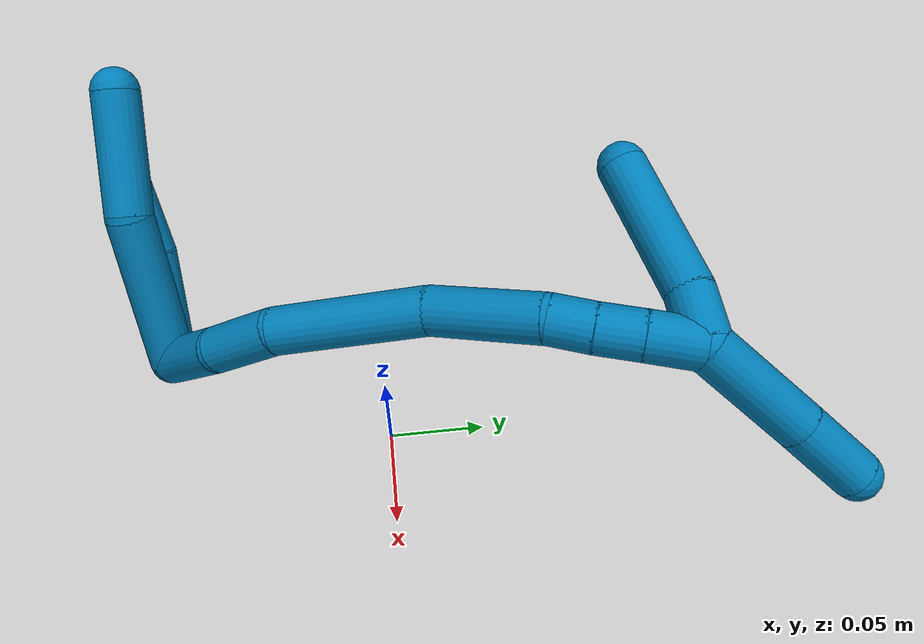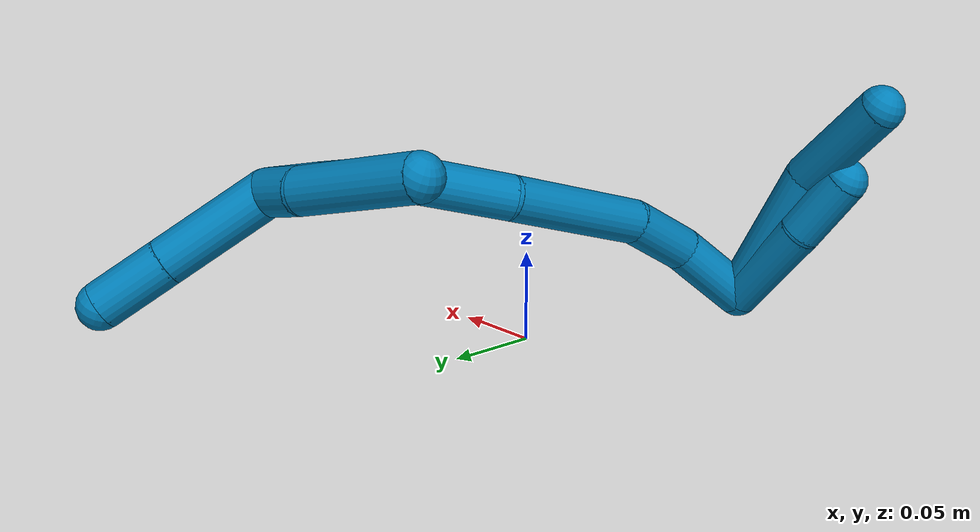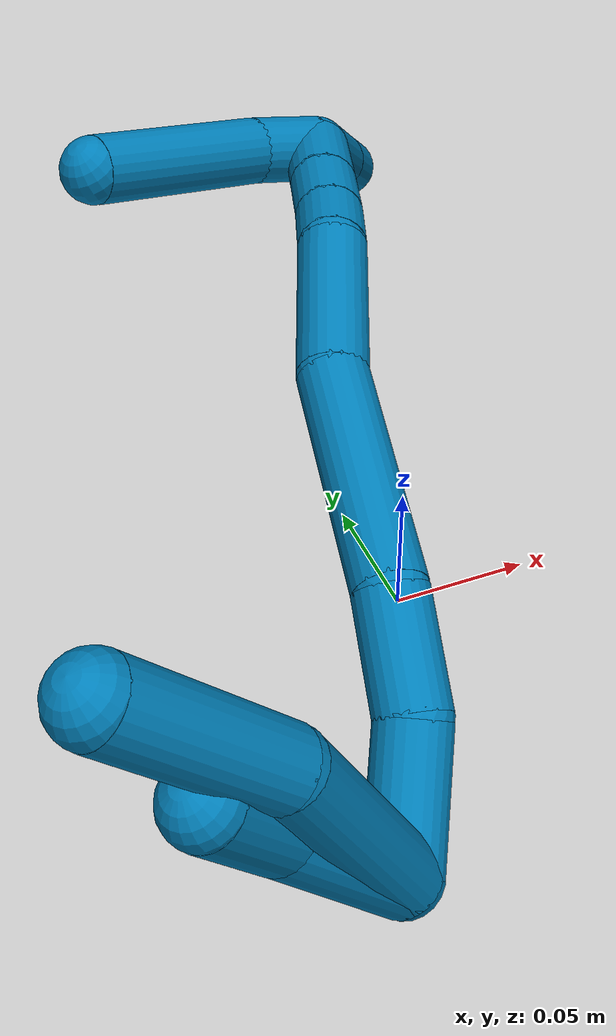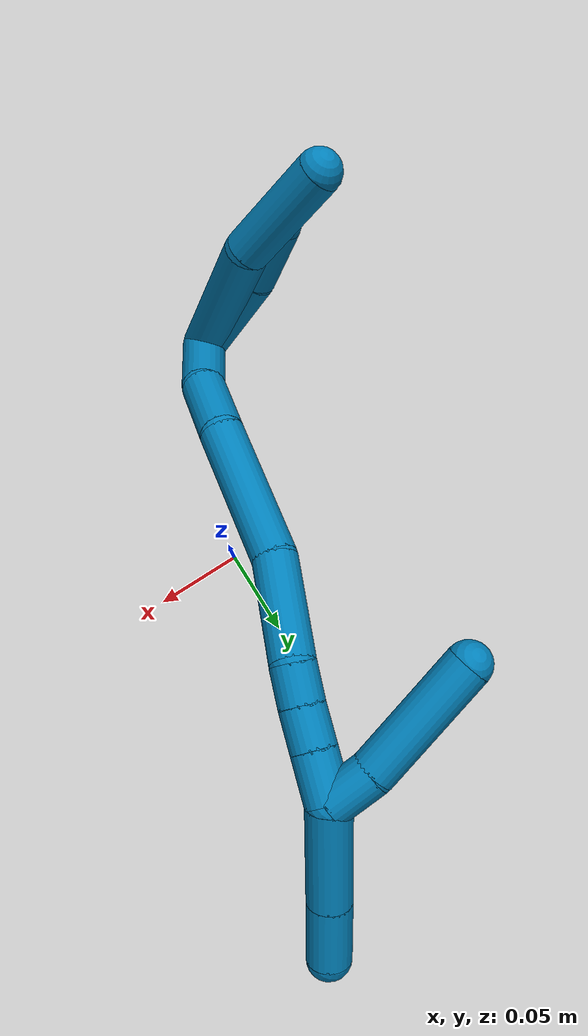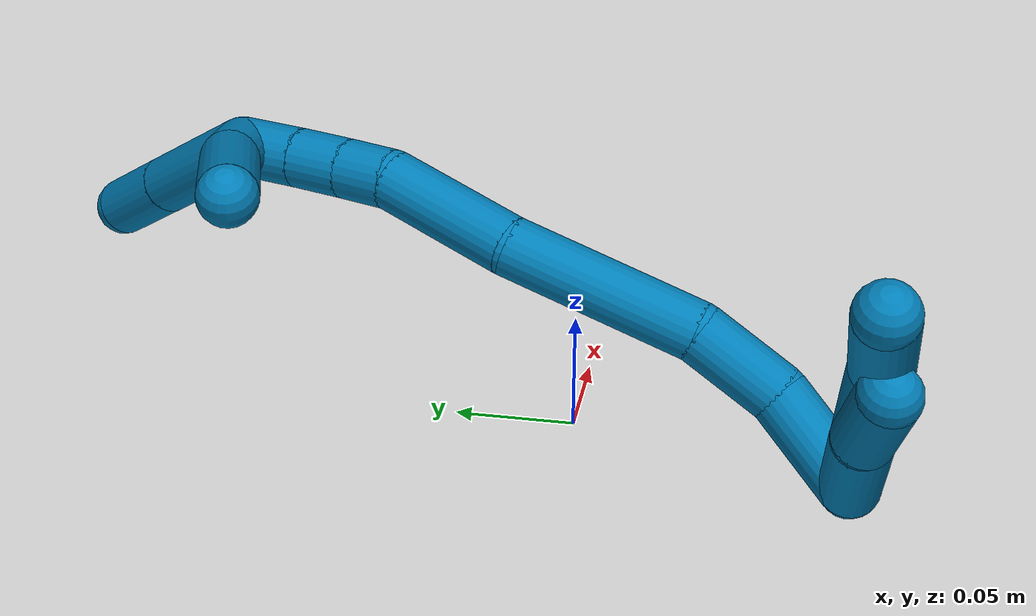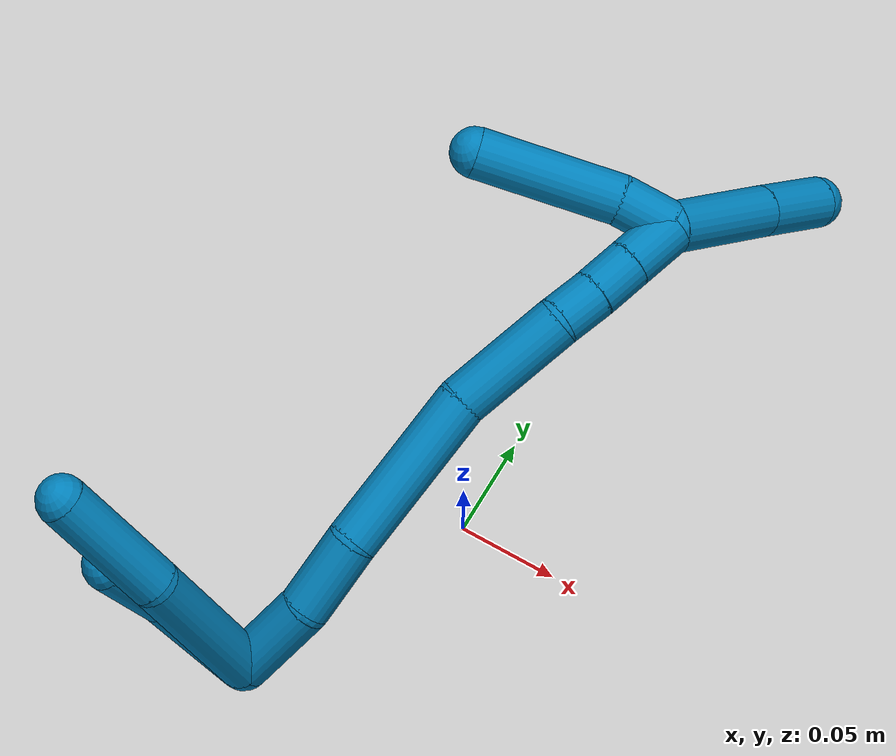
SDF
<sdf version="1.7">
 <world name="default">
  <model name="9">
   <static>0</static>
   <link name="9">
    <collision name="collision-cylinder-e_1_2_8">
     <pose>8e-05 -0.00032 -0.04298 3.13415 0.001851 0.487192</pose>
     <geometry><cylinder><radius>0.0125</radius><length>0.085963</length></cylinder></geometry>
     <surface>
      <friction><ode><mu>1.16</mu><mu2>1.16</mu2><slip1>0</slip1><slip2>0</slip2></ode></friction>
      <contact><ode><kp>1e+06</kp><kd>1</kd><max_vel>0</max_vel><min_depth>0.001</min_depth></ode></contact>
     </surface>
    </collision>
    <visual name="visual-cylinder-e_1_2_8">
     <pose>8e-05 -0.00032 -0.04298 3.13415 0.001851 0.487192</pose>
     <geometry><cylinder><radius>0.0125</radius><length>0.085963</length></cylinder></geometry>
     <material><ambient>0 0.490196 0.709804 1</ambient></material>
    </visual>
    <collision name="collision-cylinder-e_2_8_6">
     <pose>0.009794 -0.005158 -0.116159 2.99311 0.305664 2.24187</pose>
     <geometry><cylinder><radius>0.0125</radius><length>0.064037</length></cylinder></geometry>
     <surface>
      <friction><ode><mu>1.16</mu><mu2>1.16</mu2><slip1>0</slip1><slip2>0</slip2></ode></friction>
      <contact><ode><kp>1e+06</kp><kd>1</kd><max_vel>0</max_vel><min_depth>0.001</min_depth></ode></contact>
     </surface>
    </collision>
    <visual name="visual-cylinder-e_2_8_6">
     <pose>0.009794 -0.005158 -0.116159 2.99311 0.305664 2.24187</pose>
     <geometry><cylinder><radius>0.0125</radius><length>0.064037</length></cylinder></geometry>
     <material><ambient>0 0.490196 0.709804 1</ambient></material>
    </visual>
    <collision name="collision-cylinder-e_1_2_9">
     <pose>0.006128 -0.004081 -0.029458 3.00393 0.203228 1.95255</pose>
     <geometry><cylinder><radius>0.0125</radius><length>0.060728</length></cylinder></geometry>
     <surface>
      <friction><ode><mu>1.16</mu><mu2>1.16</mu2><slip1>0</slip1><slip2>0</slip2></ode></friction>
      <contact><ode><kp>1e+06</kp><kd>1</kd><max_vel>0</max_vel><min_depth>0.001</min_depth></ode></contact>
     </surface>
    </collision>
    <visual name="visual-cylinder-e_1_2_9">
     <pose>0.006128 -0.004081 -0.029458 3.00393 0.203228 1.95255</pose>
     <geometry><cylinder><radius>0.0125</radius><length>0.060728</length></cylinder></geometry>
     <material><ambient>0 0.490196 0.709804 1</ambient></material>
    </visual>
    <collision name="collision-cylinder-e_2_9_5">
     <pose>0.012994 -0.011743 -0.078208 2.95805 0.037558 0.402636</pose>
     <geometry><cylinder><radius>0.0125</radius><length>0.039272</length></cylinder></geometry>
     <surface>
      <friction><ode><mu>1.16</mu><mu2>1.16</mu2><slip1>0</slip1><slip2>0</slip2></ode></friction>
      <contact><ode><kp>1e+06</kp><kd>1</kd><max_vel>0</max_vel><min_depth>0.001</min_depth></ode></contact>
     </surface>
    </collision>
    <visual name="visual-cylinder-e_2_9_5">
     <pose>0.012994 -0.011743 -0.078208 2.95805 0.037558 0.402636</pose>
     <geometry><cylinder><radius>0.0125</radius><length>0.039272</length></cylinder></geometry>
     <material><ambient>0 0.490196 0.709804 1</ambient></material>
    </visual>
    <collision name="collision-cylinder-e_1_2_10">
     <pose>-0.000371 0.021292 -0.007998 -1.93013 -0.016313 0.023554</pose>
     <geometry><cylinder><radius>0.0125</radius><length>0.045496</length></cylinder></geometry>
     <surface>
      <friction><ode><mu>1.16</mu><mu2>1.16</mu2><slip1>0</slip1><slip2>0</slip2></ode></friction>
      <contact><ode><kp>1e+06</kp><kd>1</kd><max_vel>0</max_vel><min_depth>0.001</min_depth></ode></contact>
     </surface>
    </collision>
    <visual name="visual-cylinder-e_1_2_10">
     <pose>-0.000371 0.021292 -0.007998 -1.93013 -0.016313 0.023554</pose>
     <geometry><cylinder><radius>0.0125</radius><length>0.045496</length></cylinder></geometry>
     <material><ambient>0 0.490196 0.709804 1</ambient></material>
    </visual>
    <collision name="collision-cylinder-e_2_10_11">
     <pose>0.00439 0.060733 -0.022242 -1.90222 0.261259 -0.364217</pose>
     <geometry><cylinder><radius>0.0125</radius><length>0.039736</length></cylinder></geometry>
     <surface>
      <friction><ode><mu>1.16</mu><mu2>1.16</mu2><slip1>0</slip1><slip2>0</slip2></ode></friction>
      <contact><ode><kp>1e+06</kp><kd>1</kd><max_vel>0</max_vel><min_depth>0.001</min_depth></ode></contact>
     </surface>
    </collision>
    <visual name="visual-cylinder-e_2_10_11">
     <pose>0.00439 0.060733 -0.022242 -1.90222 0.261259 -0.364217</pose>
     <geometry><cylinder><radius>0.0125</radius><length>0.039736</length></cylinder></geometry>
     <material><ambient>0 0.490196 0.709804 1</ambient></material>
    </visual>
    <collision name="collision-cylinder-e_3_11_12">
     <pose>0.026136 0.116665 -0.032685 -1.68143 0.412036 -0.458749</pose>
     <geometry><cylinder><radius>0.0125</radius><length>0.082973</length></cylinder></geometry>
     <surface>
      <friction><ode><mu>1.16</mu><mu2>1.16</mu2><slip1>0</slip1><slip2>0</slip2></ode></friction>
      <contact><ode><kp>1e+06</kp><kd>1</kd><max_vel>0</max_vel><min_depth>0.001</min_depth></ode></contact>
     </surface>
    </collision>
    <visual name="visual-cylinder-e_3_11_12">
     <pose>0.026136 0.116665 -0.032685 -1.68143 0.412036 -0.458749</pose>
     <geometry><cylinder><radius>0.0125</radius><length>0.082973</length></cylinder></geometry>
     <material><ambient>0 0.490196 0.709804 1</ambient></material>
    </visual>
    <collision name="collision-cylinder-e_4_12_13">
     <pose>0.049675 0.183094 -0.036248 -1.54868 0.23713 -0.231991</pose>
     <geometry><cylinder><radius>0.0125</radius><length>0.058958</length></cylinder></geometry>
     <surface>
      <friction><ode><mu>1.16</mu><mu2>1.16</mu2><slip1>0</slip1><slip2>0</slip2></ode></friction>
      <contact><ode><kp>1e+06</kp><kd>1</kd><max_vel>0</max_vel><min_depth>0.001</min_depth></ode></contact>
     </surface>
    </collision>
    <visual name="visual-cylinder-e_4_12_13">
     <pose>0.049675 0.183094 -0.036248 -1.54868 0.23713 -0.231991</pose>
     <geometry><cylinder><radius>0.0125</radius><length>0.058958</length></cylinder></geometry>
     <material><ambient>0 0.490196 0.709804 1</ambient></material>
    </visual>
    <collision name="collision-cylinder-e_5_13_14">
     <pose>0.060606 0.221697 -0.032976 -1.31178 0.37088 -0.286745</pose>
     <geometry><cylinder><radius>0.0125</radius><length>0.022104</length></cylinder></geometry>
     <surface>
      <friction><ode><mu>1.16</mu><mu2>1.16</mu2><slip1>0</slip1><slip2>0</slip2></ode></friction>
      <contact><ode><kp>1e+06</kp><kd>1</kd><max_vel>0</max_vel><min_depth>0.001</min_depth></ode></contact>
     </surface>
    </collision>
    <visual name="visual-cylinder-e_5_13_14">
     <pose>0.060606 0.221697 -0.032976 -1.31178 0.37088 -0.286745</pose>
     <geometry><cylinder><radius>0.0125</radius><length>0.022104</length></cylinder></geometry>
     <material><ambient>0 0.490196 0.709804 1</ambient></material>
    </visual>
    <collision name="collision-cylinder-e_6_14_15">
     <pose>0.069231 0.241848 -0.027947 -1.34041 0.415513 -0.331095</pose>
     <geometry><cylinder><radius>0.0125</radius><length>0.022887</length></cylinder></geometry>
     <surface>
      <friction><ode><mu>1.16</mu><mu2>1.16</mu2><slip1>0</slip1><slip2>0</slip2></ode></friction>
      <contact><ode><kp>1e+06</kp><kd>1</kd><max_vel>0</max_vel><min_depth>0.001</min_depth></ode></contact>
     </surface>
    </collision>
    <visual name="visual-cylinder-e_6_14_15">
     <pose>0.069231 0.241848 -0.027947 -1.34041 0.415513 -0.331095</pose>
     <geometry><cylinder><radius>0.0125</radius><length>0.022887</length></cylinder></geometry>
     <material><ambient>0 0.490196 0.709804 1</ambient></material>
    </visual>
    <collision name="collision-cylinder-e_7_15_1">
     <pose>0.079575 0.264338 -0.022418 -1.32088 0.423756 -0.331136</pose>
     <geometry><cylinder><radius>0.0125</radius><length>0.027847</length></cylinder></geometry>
     <surface>
      <friction><ode><mu>1.16</mu><mu2>1.16</mu2><slip1>0</slip1><slip2>0</slip2></ode></friction>
      <contact><ode><kp>1e+06</kp><kd>1</kd><max_vel>0</max_vel><min_depth>0.001</min_depth></ode></contact>
     </surface>
    </collision>
    <visual name="visual-cylinder-e_7_15_1">
     <pose>0.079575 0.264338 -0.022418 -1.32088 0.423756 -0.331136</pose>
     <geometry><cylinder><radius>0.0125</radius><length>0.027847</length></cylinder></geometry>
     <material><ambient>0 0.490196 0.709804 1</ambient></material>
    </visual>
    <collision name="collision-cylinder-e_1_1_16">
     <pose>0.094795 0.294739 0.003409 -0.673494 0.316153 -0.111495</pose>
     <geometry><cylinder><radius>0.0125</radius><length>0.061078</length></cylinder></geometry>
     <surface>
      <friction><ode><mu>1.16</mu><mu2>1.16</mu2><slip1>0</slip1><slip2>0</slip2></ode></friction>
      <contact><ode><kp>1e+06</kp><kd>1</kd><max_vel>0</max_vel><min_depth>0.001</min_depth></ode></contact>
     </surface>
    </collision>
    <visual name="visual-cylinder-e_1_1_16">
     <pose>0.094795 0.294739 0.003409 -0.673494 0.316153 -0.111495</pose>
     <geometry><cylinder><radius>0.0125</radius><length>0.061078</length></cylinder></geometry>
     <material><ambient>0 0.490196 0.709804 1</ambient></material>
    </visual>
    <collision name="collision-cylinder-e_2_16_4">
     <pose>0.110122 0.324351 0.040667 -0.668506 0.304356 -0.106421</pose>
     <geometry><cylinder><radius>0.0125</radius><length>0.038922</length></cylinder></geometry>
     <surface>
      <friction><ode><mu>1.16</mu><mu2>1.16</mu2><slip1>0</slip1><slip2>0</slip2></ode></friction>
      <contact><ode><kp>1e+06</kp><kd>1</kd><max_vel>0</max_vel><min_depth>0.001</min_depth></ode></contact>
     </surface>
    </collision>
    <visual name="visual-cylinder-e_2_16_4">
     <pose>0.110122 0.324351 0.040667 -0.668506 0.304356 -0.106421</pose>
     <geometry><cylinder><radius>0.0125</radius><length>0.038922</length></cylinder></geometry>
     <material><ambient>0 0.490196 0.709804 1</ambient></material>
    </visual>
    <collision name="collision-cylinder-e_1_1_17">
     <pose>0.093317 0.269529 -0.027981 2.45681 0.619697 1.46369</pose>
     <geometry><cylinder><radius>0.0125</radius><length>0.027605</length></cylinder></geometry>
     <surface>
      <friction><ode><mu>1.16</mu><mu2>1.16</mu2><slip1>0</slip1><slip2>0</slip2></ode></friction>
      <contact><ode><kp>1e+06</kp><kd>1</kd><max_vel>0</max_vel><min_depth>0.001</min_depth></ode></contact>
     </surface>
    </collision>
    <visual name="visual-cylinder-e_1_1_17">
     <pose>0.093317 0.269529 -0.027981 2.45681 0.619697 1.46369</pose>
     <geometry><cylinder><radius>0.0125</radius><length>0.027605</length></cylinder></geometry>
     <material><ambient>0 0.490196 0.709804 1</ambient></material>
    </visual>
    <collision name="collision-cylinder-e_2_17_3">
     <pose>0.116644 0.239378 -0.060026 2.3626 0.436733 0.991224</pose>
     <geometry><cylinder><radius>0.0125</radius><length>0.072395</length></cylinder></geometry>
     <surface>
      <friction><ode><mu>1.16</mu><mu2>1.16</mu2><slip1>0</slip1><slip2>0</slip2></ode></friction>
      <contact><ode><kp>1e+06</kp><kd>1</kd><max_vel>0</max_vel><min_depth>0.001</min_depth></ode></contact>
     </surface>
    </collision>
    <visual name="visual-cylinder-e_2_17_3">
     <pose>0.116644 0.239378 -0.060026 2.3626 0.436733 0.991224</pose>
     <geometry><cylinder><radius>0.0125</radius><length>0.072395</length></cylinder></geometry>
     <material><ambient>0 0.490196 0.709804 1</ambient></material>
    </visual>
    <collision name="collision-sphere-3">
     <pose>0.131955 0.216334 -0.083367 0 -0 0</pose>
     <geometry><sphere><radius>0.0125</radius></sphere></geometry>
     <surface>
      <friction><ode><mu>1.16</mu><mu2>1.16</mu2><slip1>0</slip1><slip2>0</slip2></ode></friction>
      <contact><ode><kp>1e+06</kp><kd>1</kd><max_vel>0</max_vel><min_depth>0.001</min_depth></ode></contact>
     </surface>
    </collision>
    <visual name="visual-sphere-3">
     <pose>0.131955 0.216334 -0.083367 0 -0 0</pose>
     <geometry><sphere><radius>0.0125</radius></sphere></geometry>
     <material><ambient>0 0.490196 0.709804 1</ambient></material>
    </visual>
    <collision name="collision-sphere-17">
     <pose>0.101333 0.262422 -0.036684 0 -0 0</pose>
     <geometry><sphere><radius>0.0125</radius></sphere></geometry>
     <surface>
      <friction><ode><mu>1.16</mu><mu2>1.16</mu2><slip1>0</slip1><slip2>0</slip2></ode></friction>
      <contact><ode><kp>1e+06</kp><kd>1</kd><max_vel>0</max_vel><min_depth>0.001</min_depth></ode></contact>
     </surface>
    </collision>
    <visual name="visual-sphere-17">
     <pose>0.101333 0.262422 -0.036684 0 -0 0</pose>
     <geometry><sphere><radius>0.0125</radius></sphere></geometry>
     <material><ambient>0 0.490196 0.709804 1</ambient></material>
    </visual>
    <collision name="collision-sphere-4">
     <pose>0.115954 0.335859 0.055237 0 -0 0</pose>
     <geometry><sphere><radius>0.0125</radius></sphere></geometry>
     <surface>
      <friction><ode><mu>1.16</mu><mu2>1.16</mu2><slip1>0</slip1><slip2>0</slip2></ode></friction>
      <contact><ode><kp>1e+06</kp><kd>1</kd><max_vel>0</max_vel><min_depth>0.001</min_depth></ode></contact>
     </surface>
    </collision>
    <visual name="visual-sphere-4">
     <pose>0.115954 0.335859 0.055237 0 -0 0</pose>
     <geometry><sphere><radius>0.0125</radius></sphere></geometry>
     <material><ambient>0 0.490196 0.709804 1</ambient></material>
    </visual>
    <collision name="collision-sphere-16">
     <pose>0.10429 0.312843 0.026096 0 -0 0</pose>
     <geometry><sphere><radius>0.0125</radius></sphere></geometry>
     <surface>
      <friction><ode><mu>1.16</mu><mu2>1.16</mu2><slip1>0</slip1><slip2>0</slip2></ode></friction>
      <contact><ode><kp>1e+06</kp><kd>1</kd><max_vel>0</max_vel><min_depth>0.001</min_depth></ode></contact>
     </surface>
    </collision>
    <visual name="visual-sphere-16">
     <pose>0.10429 0.312843 0.026096 0 -0 0</pose>
     <geometry><sphere><radius>0.0125</radius></sphere></geometry>
     <material><ambient>0 0.490196 0.709804 1</ambient></material>
    </visual>
    <collision name="collision-sphere-1">
     <pose>0.0853 0.276636 -0.019279 0 -0 0</pose>
     <geometry><sphere><radius>0.0125</radius></sphere></geometry>
     <surface>
      <friction><ode><mu>1.16</mu><mu2>1.16</mu2><slip1>0</slip1><slip2>0</slip2></ode></friction>
      <contact><ode><kp>1e+06</kp><kd>1</kd><max_vel>0</max_vel><min_depth>0.001</min_depth></ode></contact>
     </surface>
    </collision>
    <visual name="visual-sphere-1">
     <pose>0.0853 0.276636 -0.019279 0 -0 0</pose>
     <geometry><sphere><radius>0.0125</radius></sphere></geometry>
     <material><ambient>0 0.490196 0.709804 1</ambient></material>
    </visual>
    <collision name="collision-sphere-15">
     <pose>0.07385 0.25204 -0.025557 0 -0 0</pose>
     <geometry><sphere><radius>0.0125</radius></sphere></geometry>
     <surface>
      <friction><ode><mu>1.16</mu><mu2>1.16</mu2><slip1>0</slip1><slip2>0</slip2></ode></friction>
      <contact><ode><kp>1e+06</kp><kd>1</kd><max_vel>0</max_vel><min_depth>0.001</min_depth></ode></contact>
     </surface>
    </collision>
    <visual name="visual-sphere-15">
     <pose>0.07385 0.25204 -0.025557 0 -0 0</pose>
     <geometry><sphere><radius>0.0125</radius></sphere></geometry>
     <material><ambient>0 0.490196 0.709804 1</ambient></material>
    </visual>
    <collision name="collision-sphere-14">
     <pose>0.064612 0.231655 -0.030338 0 -0 0</pose>
     <geometry><sphere><radius>0.0125</radius></sphere></geometry>
     <surface>
      <friction><ode><mu>1.16</mu><mu2>1.16</mu2><slip1>0</slip1><slip2>0</slip2></ode></friction>
      <contact><ode><kp>1e+06</kp><kd>1</kd><max_vel>0</max_vel><min_depth>0.001</min_depth></ode></contact>
     </surface>
    </collision>
    <visual name="visual-sphere-14">
     <pose>0.064612 0.231655 -0.030338 0 -0 0</pose>
     <geometry><sphere><radius>0.0125</radius></sphere></geometry>
     <material><ambient>0 0.490196 0.709804 1</ambient></material>
    </visual>
    <collision name="collision-sphere-13">
     <pose>0.0566 0.21174 -0.035615 0 -0 0</pose>
     <geometry><sphere><radius>0.0125</radius></sphere></geometry>
     <surface>
      <friction><ode><mu>1.16</mu><mu2>1.16</mu2><slip1>0</slip1><slip2>0</slip2></ode></friction>
      <contact><ode><kp>1e+06</kp><kd>1</kd><max_vel>0</max_vel><min_depth>0.001</min_depth></ode></contact>
     </surface>
    </collision>
    <visual name="visual-sphere-13">
     <pose>0.0566 0.21174 -0.035615 0 -0 0</pose>
     <geometry><sphere><radius>0.0125</radius></sphere></geometry>
     <material><ambient>0 0.490196 0.709804 1</ambient></material>
    </visual>
    <collision name="collision-sphere-12">
     <pose>0.04275 0.154447 -0.036882 0 -0 0</pose>
     <geometry><sphere><radius>0.0125</radius></sphere></geometry>
     <surface>
      <friction><ode><mu>1.16</mu><mu2>1.16</mu2><slip1>0</slip1><slip2>0</slip2></ode></friction>
      <contact><ode><kp>1e+06</kp><kd>1</kd><max_vel>0</max_vel><min_depth>0.001</min_depth></ode></contact>
     </surface>
    </collision>
    <visual name="visual-sphere-12">
     <pose>0.04275 0.154447 -0.036882 0 -0 0</pose>
     <geometry><sphere><radius>0.0125</radius></sphere></geometry>
     <material><ambient>0 0.490196 0.709804 1</ambient></material>
    </visual>
    <collision name="collision-sphere-11">
     <pose>0.009521 0.078883 -0.028488 0 -0 0</pose>
     <geometry><sphere><radius>0.0125</radius></sphere></geometry>
     <surface>
      <friction><ode><mu>1.16</mu><mu2>1.16</mu2><slip1>0</slip1><slip2>0</slip2></ode></friction>
      <contact><ode><kp>1e+06</kp><kd>1</kd><max_vel>0</max_vel><min_depth>0.001</min_depth></ode></contact>
     </surface>
    </collision>
    <visual name="visual-sphere-11">
     <pose>0.009521 0.078883 -0.028488 0 -0 0</pose>
     <geometry><sphere><radius>0.0125</radius></sphere></geometry>
     <material><ambient>0 0.490196 0.709804 1</ambient></material>
    </visual>
    <collision name="collision-sphere-8">
     <pose>0.000159 -0.00064 -0.08596 0 -0 0</pose>
     <geometry><sphere><radius>0.0125</radius></sphere></geometry>
     <surface>
      <friction><ode><mu>1.16</mu><mu2>1.16</mu2><slip1>0</slip1><slip2>0</slip2></ode></friction>
      <contact><ode><kp>1e+06</kp><kd>1</kd><max_vel>0</max_vel><min_depth>0.001</min_depth></ode></contact>
     </surface>
    </collision>
    <visual name="visual-sphere-8">
     <pose>0.000159 -0.00064 -0.08596 0 -0 0</pose>
     <geometry><sphere><radius>0.0125</radius></sphere></geometry>
     <material><ambient>0 0.490196 0.709804 1</ambient></material>
    </visual>
    <collision name="collision-sphere-2">
     <geometry><sphere><radius>0.0125</radius></sphere></geometry>
     <surface>
      <friction><ode><mu>1.16</mu><mu2>1.16</mu2><slip1>0</slip1><slip2>0</slip2></ode></friction>
      <contact><ode><kp>1e+06</kp><kd>1</kd><max_vel>0</max_vel><min_depth>0.001</min_depth></ode></contact>
     </surface>
    </collision>
    <visual name="visual-sphere-2">
     <geometry><sphere><radius>0.0125</radius></sphere></geometry>
     <material><ambient>0 0.490196 0.709804 1</ambient></material>
    </visual>
    <collision name="collision-sphere-9">
     <pose>0.012257 -0.008162 -0.058915 0 -0 0</pose>
     <geometry><sphere><radius>0.0125</radius></sphere></geometry>
     <surface>
      <friction><ode><mu>1.16</mu><mu2>1.16</mu2><slip1>0</slip1><slip2>0</slip2></ode></friction>
      <contact><ode><kp>1e+06</kp><kd>1</kd><max_vel>0</max_vel><min_depth>0.001</min_depth></ode></contact>
     </surface>
    </collision>
    <visual name="visual-sphere-9">
     <pose>0.012257 -0.008162 -0.058915 0 -0 0</pose>
     <geometry><sphere><radius>0.0125</radius></sphere></geometry>
     <material><ambient>0 0.490196 0.709804 1</ambient></material>
    </visual>
    <collision name="collision-sphere-6">
     <pose>0.01943 -0.009675 -0.146357 0 -0 0</pose>
     <geometry><sphere><radius>0.0125</radius></sphere></geometry>
     <surface>
      <friction><ode><mu>1.16</mu><mu2>1.16</mu2><slip1>0</slip1><slip2>0</slip2></ode></friction>
      <contact><ode><kp>1e+06</kp><kd>1</kd><max_vel>0</max_vel><min_depth>0.001</min_depth></ode></contact>
     </surface>
    </collision>
    <visual name="visual-sphere-6">
     <pose>0.01943 -0.009675 -0.146357 0 -0 0</pose>
     <geometry><sphere><radius>0.0125</radius></sphere></geometry>
     <material><ambient>0 0.490196 0.709804 1</ambient></material>
    </visual>
    <collision name="collision-sphere-5">
     <pose>0.013731 -0.015325 -0.097501 0 -0 0</pose>
     <geometry><sphere><radius>0.0125</radius></sphere></geometry>
     <surface>
      <friction><ode><mu>1.16</mu><mu2>1.16</mu2><slip1>0</slip1><slip2>0</slip2></ode></friction>
      <contact><ode><kp>1e+06</kp><kd>1</kd><max_vel>0</max_vel><min_depth>0.001</min_depth></ode></contact>
     </surface>
    </collision>
    <visual name="visual-sphere-5">
     <pose>0.013731 -0.015325 -0.097501 0 -0 0</pose>
     <geometry><sphere><radius>0.0125</radius></sphere></geometry>
     <material><ambient>0 0.490196 0.709804 1</ambient></material>
    </visual>
    <collision name="collision-sphere-10">
     <pose>-0.000742 0.042584 -0.015997 0 -0 0</pose>
     <geometry><sphere><radius>0.0125</radius></sphere></geometry>
     <surface>
      <friction><ode><mu>1.16</mu><mu2>1.16</mu2><slip1>0</slip1><slip2>0</slip2></ode></friction>
      <contact><ode><kp>1e+06</kp><kd>1</kd><max_vel>0</max_vel><min_depth>0.001</min_depth></ode></contact>
     </surface>
    </collision>
    <visual name="visual-sphere-10">
     <pose>-0.000742 0.042584 -0.015997 0 -0 0</pose>
     <geometry><sphere><radius>0.0125</radius></sphere></geometry>
     <material><ambient>0 0.490196 0.709804 1</ambient></material>
    </visual>
    <inertial>
     <pose>0.044011 0.127977 -0.036547 0 -0 0</pose>
     <mass>0.75</mass>
     <inertia>
      <ixx>0.000237</ixx>
      <ixy>0</ixy>
      <ixz>0</ixz>
      <iyy>7.2e-05</iyy>
      <iyz>0</iyz>
      <izz>-0.000157</izz>
     </inertia>
    </inertial>
   </link>
   <pose>-0.052941 -0.116814 0.014428 2.76455 0.305545 2.40276</pose>
  </model>
 </world>
</sdf>
